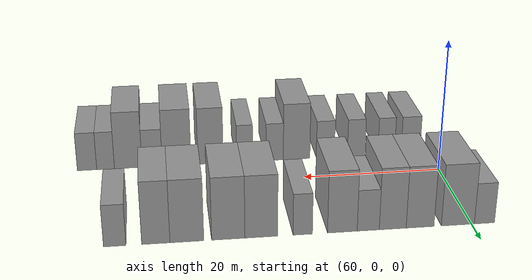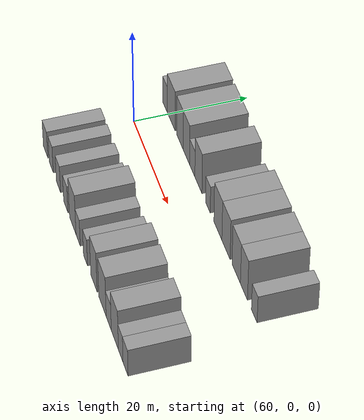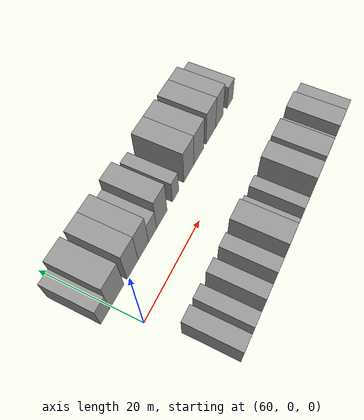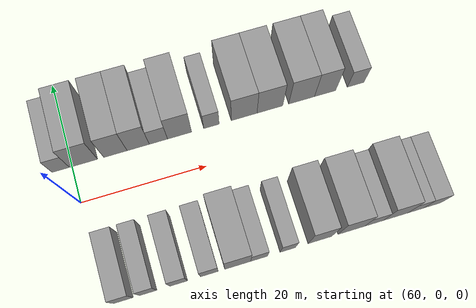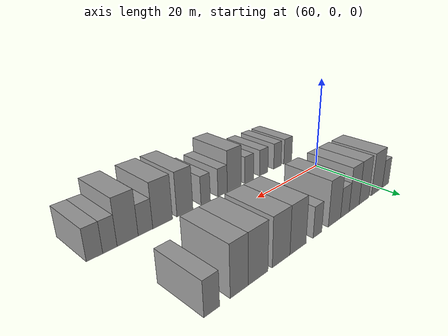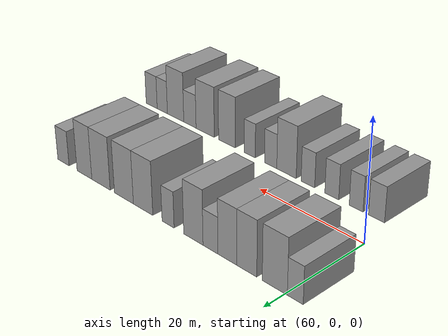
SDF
<sdf version="1.6">
 <world name="default">
  <model name="building_13">
   <static>1</static>
   <pose>58.2341 11.0000 0 0.000000 0.000000 1.570796</pose>
   <link name="link">
    <pose>0 0 3.00 0 0 0</pose>
    <collision name="collision"><geometry><box><size>10.0000 2.7576 6.0000</size></box></geometry></collision>
    <visual name="visual">
     <cast_shadows>0</cast_shadows>
     <geometry><box><size>10.0000 2.7576 6.0000</size></box></geometry>
     <material>
      <script>
       <uri>model://grey_wall/materials/scripts</uri>
       <uri>model://grey_wall/materials/textures</uri>
       <name>vrc/grey_wall</name>
      </script>
     </material>
    </visual>
   </link>
  </model>
  <model name="building_14">
   <static>1</static>
   <pose>61.8571 11.0000 0 0.000000 0.000000 1.570796</pose>
   <link name="link">
    <pose>0 0 4.50 0 0 0</pose>
    <collision name="collision"><geometry><box><size>10.0000 4.4884 9.0000</size></box></geometry></collision>
    <visual name="visual">
     <cast_shadows>0</cast_shadows>
     <geometry><box><size>10.0000 4.4884 9.0000</size></box></geometry>
     <material>
      <script>
       <uri>model://grey_wall/materials/scripts</uri>
       <uri>model://grey_wall/materials/textures</uri>
       <name>vrc/grey_wall</name>
      </script>
     </material>
    </visual>
   </link>
  </model>
  <model name="building_15">
   <static>1</static>
   <pose>66.9812 11.0000 0 0.000000 0.000000 1.570796</pose>
   <link name="link">
    <pose>0 0 4.50 0 0 0</pose>
    <collision name="collision"><geometry><box><size>10.0000 3.7596 9.0000</size></box></geometry></collision>
    <visual name="visual">
     <cast_shadows>0</cast_shadows>
     <geometry><box><size>10.0000 3.7596 9.0000</size></box></geometry>
     <material>
      <script>
       <uri>model://grey_wall/materials/scripts</uri>
       <uri>model://grey_wall/materials/textures</uri>
       <name>vrc/grey_wall</name>
      </script>
     </material>
    </visual>
   </link>
  </model>
  <model name="building_16">
   <static>1</static>
   <pose>70.6647 11.0000 0 0.000000 0.000000 1.570796</pose>
   <link name="link">
    <pose>0 0 4.50 0 0 0</pose>
    <collision name="collision"><geometry><box><size>10.0000 3.6075 9.0000</size></box></geometry></collision>
    <visual name="visual">
     <cast_shadows>0</cast_shadows>
     <geometry><box><size>10.0000 3.6075 9.0000</size></box></geometry>
     <material>
      <script>
       <uri>model://grey_wall/materials/scripts</uri>
       <uri>model://grey_wall/materials/textures</uri>
       <name>vrc/grey_wall</name>
      </script>
     </material>
    </visual>
   </link>
  </model>
  <model name="building_17">
   <static>1</static>
   <pose>73.9417 11.0000 0 0.000000 0.000000 1.570796</pose>
   <link name="link">
    <pose>0 0 3.00 0 0 0</pose>
    <collision name="collision"><geometry><box><size>10.0000 2.9465 6.0000</size></box></geometry></collision>
    <visual name="visual">
     <cast_shadows>0</cast_shadows>
     <geometry><box><size>10.0000 2.9465 6.0000</size></box></geometry>
     <material>
      <script>
       <uri>model://grey_wall/materials/scripts</uri>
       <uri>model://grey_wall/materials/textures</uri>
       <name>vrc/grey_wall</name>
      </script>
     </material>
    </visual>
   </link>
  </model>
  <model name="building_18">
   <static>1</static>
   <pose>77.3780 11.0000 0 0.000000 0.000000 1.570796</pose>
   <link name="link">
    <pose>0 0 4.50 0 0 0</pose>
    <collision name="collision"><geometry><box><size>10.0000 3.9261 9.0000</size></box></geometry></collision>
    <visual name="visual">
     <cast_shadows>0</cast_shadows>
     <geometry><box><size>10.0000 3.9261 9.0000</size></box></geometry>
     <material>
      <script>
       <uri>model://grey_wall/materials/scripts</uri>
       <uri>model://grey_wall/materials/textures</uri>
       <name>vrc/grey_wall</name>
      </script>
     </material>
    </visual>
   </link>
  </model>
  <model name="building_19">
   <static>1</static>
   <pose>82.6118 11.0000 0 0.000000 0.000000 1.570796</pose>
   <link name="link">
    <pose>0 0 3.00 0 0 0</pose>
    <collision name="collision"><geometry><box><size>10.0000 2.5414 6.0000</size></box></geometry></collision>
    <visual name="visual">
     <cast_shadows>0</cast_shadows>
     <geometry><box><size>10.0000 2.5414 6.0000</size></box></geometry>
     <material>
      <script>
       <uri>model://grey_wall/materials/scripts</uri>
       <uri>model://grey_wall/materials/textures</uri>
       <name>vrc/grey_wall</name>
      </script>
     </material>
    </visual>
   </link>
  </model>
  <model name="building_20">
   <static>1</static>
   <pose>88.0223 11.0000 0 0.000000 0.000000 1.570796</pose>
   <link name="link">
    <pose>0 0 4.50 0 0 0</pose>
    <collision name="collision"><geometry><box><size>10.0000 4.2796 9.0000</size></box></geometry></collision>
    <visual name="visual">
     <cast_shadows>0</cast_shadows>
     <geometry><box><size>10.0000 4.2796 9.0000</size></box></geometry>
     <material>
      <script>
       <uri>model://grey_wall/materials/scripts</uri>
       <uri>model://grey_wall/materials/textures</uri>
       <name>vrc/grey_wall</name>
      </script>
     </material>
    </visual>
   </link>
  </model>
  <model name="building_21">
   <static>1</static>
   <pose>92.3208 11.0000 0 0.000000 0.000000 1.570796</pose>
   <link name="link">
    <pose>0 0 4.50 0 0 0</pose>
    <collision name="collision"><geometry><box><size>10.0000 4.3175 9.0000</size></box></geometry></collision>
    <visual name="visual">
     <cast_shadows>0</cast_shadows>
     <geometry><box><size>10.0000 4.3175 9.0000</size></box></geometry>
     <material>
      <script>
       <uri>model://grey_wall/materials/scripts</uri>
       <uri>model://grey_wall/materials/textures</uri>
       <name>vrc/grey_wall</name>
      </script>
     </material>
    </visual>
   </link>
  </model>
  <model name="building_22">
   <static>1</static>
   <pose>97.6514 11.0000 0 0.000000 0.000000 1.570796</pose>
   <link name="link">
    <pose>0 0 4.50 0 0 0</pose>
    <collision name="collision"><geometry><box><size>10.0000 4.3437 9.0000</size></box></geometry></collision>
    <visual name="visual">
     <cast_shadows>0</cast_shadows>
     <geometry><box><size>10.0000 4.3437 9.0000</size></box></geometry>
     <material>
      <script>
       <uri>model://grey_wall/materials/scripts</uri>
       <uri>model://grey_wall/materials/textures</uri>
       <name>vrc/grey_wall</name>
      </script>
     </material>
    </visual>
   </link>
  </model>
  <model name="building_23">
   <static>1</static>
   <pose>101.6237 11.0000 0 0.000000 0.000000 1.570796</pose>
   <link name="link">
    <pose>0 0 4.50 0 0 0</pose>
    <collision name="collision"><geometry><box><size>10.0000 3.6009 9.0000</size></box></geometry></collision>
    <visual name="visual">
     <cast_shadows>0</cast_shadows>
     <geometry><box><size>10.0000 3.6009 9.0000</size></box></geometry>
     <material>
      <script>
       <uri>model://grey_wall/materials/scripts</uri>
       <uri>model://grey_wall/materials/textures</uri>
       <name>vrc/grey_wall</name>
      </script>
     </material>
    </visual>
   </link>
  </model>
  <model name="building_24">
   <static>1</static>
   <pose>106.8404 11.0000 0 0.000000 0.000000 1.570796</pose>
   <link name="link">
    <pose>0 0 3.00 0 0 0</pose>
    <collision name="collision"><geometry><box><size>10.0000 2.8325 6.0000</size></box></geometry></collision>
    <visual name="visual">
     <cast_shadows>0</cast_shadows>
     <geometry><box><size>10.0000 2.8325 6.0000</size></box></geometry>
     <material>
      <script>
       <uri>model://grey_wall/materials/scripts</uri>
       <uri>model://grey_wall/materials/textures</uri>
       <name>vrc/grey_wall</name>
      </script>
     </material>
    </visual>
   </link>
  </model>
  <model name="building_62">
   <static>1</static>
   <pose>62.7413 -11.0000 0 0.000000 0.000000 1.570796</pose>
   <link name="link">
    <pose>0 0 3.00 0 0 0</pose>
    <collision name="collision"><geometry><box><size>10.0000 2.9390 6.0000</size></box></geometry></collision>
    <visual name="visual">
     <cast_shadows>0</cast_shadows>
     <geometry><box><size>10.0000 2.9390 6.0000</size></box></geometry>
     <material>
      <script>
       <uri>model://grey_wall/materials/scripts</uri>
       <uri>model://grey_wall/materials/textures</uri>
       <name>vrc/grey_wall</name>
      </script>
     </material>
    </visual>
   </link>
  </model>
  <model name="building_63">
   <static>1</static>
   <pose>66.5079 -11.0000 0 0.000000 0.000000 1.570796</pose>
   <link name="link">
    <pose>0 0 3.00 0 0 0</pose>
    <collision name="collision"><geometry><box><size>10.0000 2.5941 6.0000</size></box></geometry></collision>
    <visual name="visual">
     <cast_shadows>0</cast_shadows>
     <geometry><box><size>10.0000 2.5941 6.0000</size></box></geometry>
     <material>
      <script>
       <uri>model://grey_wall/materials/scripts</uri>
       <uri>model://grey_wall/materials/textures</uri>
       <name>vrc/grey_wall</name>
      </script>
     </material>
    </visual>
   </link>
  </model>
  <model name="building_64">
   <static>1</static>
   <pose>71.1554 -11.0000 0 0.000000 0.000000 1.570796</pose>
   <link name="link">
    <pose>0 0 3.00 0 0 0</pose>
    <collision name="collision"><geometry><box><size>10.0000 2.7009 6.0000</size></box></geometry></collision>
    <visual name="visual">
     <cast_shadows>0</cast_shadows>
     <geometry><box><size>10.0000 2.7009 6.0000</size></box></geometry>
     <material>
      <script>
       <uri>model://grey_wall/materials/scripts</uri>
       <uri>model://grey_wall/materials/textures</uri>
       <name>vrc/grey_wall</name>
      </script>
     </material>
    </visual>
   </link>
  </model>
  <model name="building_65">
   <static>1</static>
   <pose>75.8728 -11.0000 0 0.000000 0.000000 1.570796</pose>
   <link name="link">
    <pose>0 0 3.00 0 0 0</pose>
    <collision name="collision"><geometry><box><size>10.0000 2.7339 6.0000</size></box></geometry></collision>
    <visual name="visual">
     <cast_shadows>0</cast_shadows>
     <geometry><box><size>10.0000 2.7339 6.0000</size></box></geometry>
     <material>
      <script>
       <uri>model://grey_wall/materials/scripts</uri>
       <uri>model://grey_wall/materials/textures</uri>
       <name>vrc/grey_wall</name>
      </script>
     </material>
    </visual>
   </link>
  </model>
  <model name="building_66">
   <static>1</static>
   <pose>80.2541 -11.0000 0 0.000000 0.000000 1.570796</pose>
   <link name="link">
    <pose>0 0 4.50 0 0 0</pose>
    <collision name="collision"><geometry><box><size>10.0000 4.0289 9.0000</size></box></geometry></collision>
    <visual name="visual">
     <cast_shadows>0</cast_shadows>
     <geometry><box><size>10.0000 4.0289 9.0000</size></box></geometry>
     <material>
      <script>
       <uri>model://grey_wall/materials/scripts</uri>
       <uri>model://grey_wall/materials/textures</uri>
       <name>vrc/grey_wall</name>
      </script>
     </material>
    </visual>
   </link>
  </model>
  <model name="building_67">
   <static>1</static>
   <pose>83.5742 -11.0000 0 0.000000 0.000000 1.570796</pose>
   <link name="link">
    <pose>0 0 3.00 0 0 0</pose>
    <collision name="collision"><geometry><box><size>10.0000 2.6113 6.0000</size></box></geometry></collision>
    <visual name="visual">
     <cast_shadows>0</cast_shadows>
     <geometry><box><size>10.0000 2.6113 6.0000</size></box></geometry>
     <material>
      <script>
       <uri>model://grey_wall/materials/scripts</uri>
       <uri>model://grey_wall/materials/textures</uri>
       <name>vrc/grey_wall</name>
      </script>
     </material>
    </visual>
   </link>
  </model>
  <model name="building_68">
   <static>1</static>
   <pose>88.0871 -11.0000 0 0.000000 0.000000 1.570796</pose>
   <link name="link">
    <pose>0 0 3.00 0 0 0</pose>
    <collision name="collision"><geometry><box><size>10.0000 2.4144 6.0000</size></box></geometry></collision>
    <visual name="visual">
     <cast_shadows>0</cast_shadows>
     <geometry><box><size>10.0000 2.4144 6.0000</size></box></geometry>
     <material>
      <script>
       <uri>model://grey_wall/materials/scripts</uri>
       <uri>model://grey_wall/materials/textures</uri>
       <name>vrc/grey_wall</name>
      </script>
     </material>
    </visual>
   </link>
  </model>
  <model name="building_69">
   <static>1</static>
   <pose>93.1912 -11.0000 0 0.000000 0.000000 1.570796</pose>
   <link name="link">
    <pose>0 0 4.50 0 0 0</pose>
    <collision name="collision"><geometry><box><size>10.0000 3.7938 9.0000</size></box></geometry></collision>
    <visual name="visual">
     <cast_shadows>0</cast_shadows>
     <geometry><box><size>10.0000 3.7938 9.0000</size></box></geometry>
     <material>
      <script>
       <uri>model://grey_wall/materials/scripts</uri>
       <uri>model://grey_wall/materials/textures</uri>
       <name>vrc/grey_wall</name>
      </script>
     </material>
    </visual>
   </link>
  </model>
  <model name="building_70">
   <static>1</static>
   <pose>98.2286 -11.0000 0 0.000000 0.000000 1.570796</pose>
   <link name="link">
    <pose>0 0 4.50 0 0 0</pose>
    <collision name="collision"><geometry><box><size>10.0000 4.2812 9.0000</size></box></geometry></collision>
    <visual name="visual">
     <cast_shadows>0</cast_shadows>
     <geometry><box><size>10.0000 4.2812 9.0000</size></box></geometry>
     <material>
      <script>
       <uri>model://grey_wall/materials/scripts</uri>
       <uri>model://grey_wall/materials/textures</uri>
       <name>vrc/grey_wall</name>
      </script>
     </material>
    </visual>
   </link>
  </model>
  <model name="building_71">
   <static>1</static>
   <pose>101.8513 -11.0000 0 0.000000 0.000000 1.570796</pose>
   <link name="link">
    <pose>0 0 3.00 0 0 0</pose>
    <collision name="collision"><geometry><box><size>10.0000 2.9641 6.0000</size></box></geometry></collision>
    <visual name="visual">
     <cast_shadows>0</cast_shadows>
     <geometry><box><size>10.0000 2.9641 6.0000</size></box></geometry>
     <material>
      <script>
       <uri>model://grey_wall/materials/scripts</uri>
       <uri>model://grey_wall/materials/textures</uri>
       <name>vrc/grey_wall</name>
      </script>
     </material>
    </visual>
   </link>
  </model>
  <model name="building_72">
   <static>1</static>
   <pose>105.3528 -11.0000 0 0.000000 0.000000 1.570796</pose>
   <link name="link">
    <pose>0 0 4.50 0 0 0</pose>
    <collision name="collision"><geometry><box><size>10.0000 4.0390 9.0000</size></box></geometry></collision>
    <visual name="visual">
     <cast_shadows>0</cast_shadows>
     <geometry><box><size>10.0000 4.0390 9.0000</size></box></geometry>
     <material>
      <script>
       <uri>model://grey_wall/materials/scripts</uri>
       <uri>model://grey_wall/materials/textures</uri>
       <name>vrc/grey_wall</name>
      </script>
     </material>
    </visual>
   </link>
  </model>
  <model name="building_73">
   <static>1</static>
   <pose>108.6617 -11.0000 0 0.000000 0.000000 1.570796</pose>
   <link name="link">
    <pose>0 0 3.00 0 0 0</pose>
    <collision name="collision"><geometry><box><size>10.0000 2.5790 6.0000</size></box></geometry></collision>
    <visual name="visual">
     <cast_shadows>0</cast_shadows>
     <geometry><box><size>10.0000 2.5790 6.0000</size></box></geometry>
     <material>
      <script>
       <uri>model://grey_wall/materials/scripts</uri>
       <uri>model://grey_wall/materials/textures</uri>
       <name>vrc/grey_wall</name>
      </script>
     </material>
    </visual>
   </link>
  </model>
  <model name="building_74">
   <static>1</static>
   <pose>111.3557 -11.0000 0 0.000000 0.000000 1.570796</pose>
   <link name="link">
    <pose>0 0 3.00 0 0 0</pose>
    <collision name="collision"><geometry><box><size>10.0000 2.8090 6.0000</size></box></geometry></collision>
    <visual name="visual">
     <cast_shadows>0</cast_shadows>
     <geometry><box><size>10.0000 2.8090 6.0000</size></box></geometry>
     <material>
      <script>
       <uri>model://grey_wall/materials/scripts</uri>
       <uri>model://grey_wall/materials/textures</uri>
       <name>vrc/grey_wall</name>
      </script>
     </material>
    </visual>
   </link>
  </model>
 </world>
</sdf>
